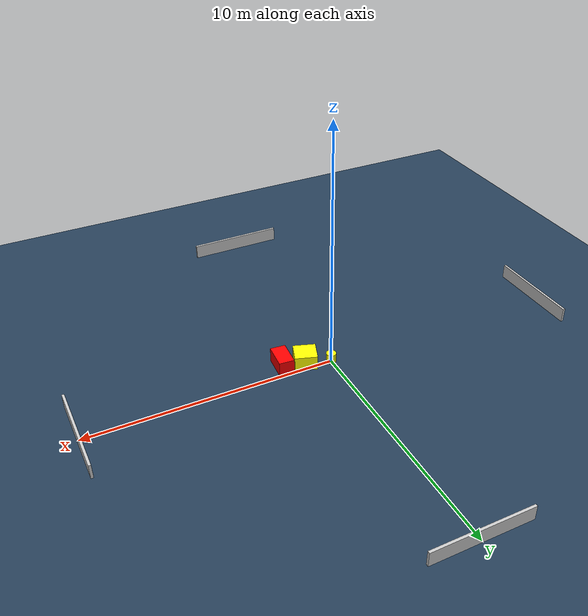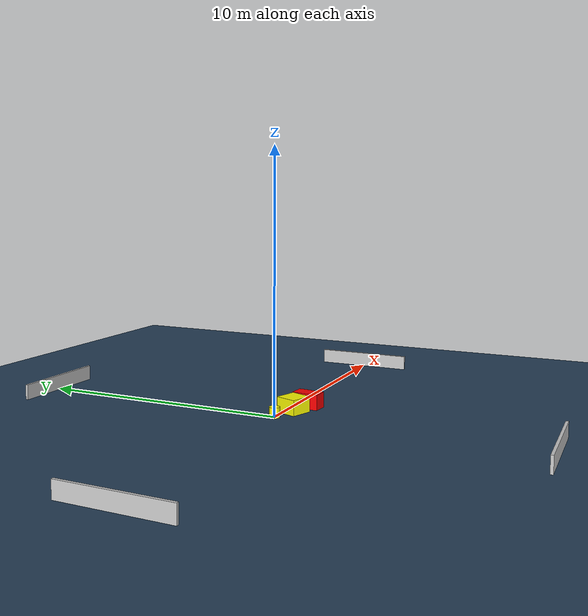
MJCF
<?xml version="1.0" ?>
<mujoco model="generated_environment">
  <option timestep="0.01" integrator="RK4" cone="elliptic"/>
  <default>
    <geom density="1"/>
  </default>
  <asset>
    <texture builtin="gradient" height="3072" name="skybox" rgb1="0.3 0.5 0.7" rgb2="0 0 0" type="skybox" width="512"/>
    <texture builtin="checker" height="300" name="groundplane" rgb1="0.2 0.3 0.4" rgb2="0.1 0.2 0.3" type="2d" width="300"/>
    <material name="groundplane" reflectance="0.2" texrepeat="5 5" texture="groundplane"/>
  </asset>
  <worldbody>
    <light dir="0 0 -1" directional="true" pos="0 0 1.5"/>
    <geom condim="3" friction="0.5 0.005 0.001" material="groundplane" name="floor" pos="0 0 0" size="0 0 0.05" type="plane"/>
    <body name="walls">
      <geom name="wall_1" condim="4" pos="-10.0 0.0 0.3" rgba="0.800000011920929 0.800000011920929 0.800000011920929 1.0" size="0.05 2.0 0.3" type="box"/>
      <geom name="wall_2" condim="4" pos="10.0 0.0 0.3" rgba="0.800000011920929 0.800000011920929 0.800000011920929 1.0" size="0.05 2.0 0.3" type="box"/>
      <geom name="wall_3" condim="4" pos="0.0 -10.0 0.3" rgba="0.800000011920929 0.800000011920929 0.800000011920929 1.0" size="2.0 0.05 0.3" type="box"/>
      <geom name="wall_4" condim="4" pos="0.0 10.0 0.3" rgba="0.800000011920929 0.800000011920929 0.800000011920929 1.0" size="2.0 0.05 0.3" type="box"/>
    </body>
    <body name="robot">
      <joint name="joint_x" type="slide" pos="0 0 0" axis="1 0 0"/>
      <joint name="joint_y" type="slide" pos="0 0 0" axis="0 1 0"/>
      <geom name="robot" type="cylinder" pos="0.0 0.0 0.2" size="0.2 0.2 0.0" mass="5.0" friction="1.0 0.005 0.0001" condim="4" rgba="1.0 1.0 0.0 1.0"/>
    </body>
    <body name="obstacle_1_movable">
      <geom name="obstacle_1_movable" condim="4" pos="0.9808166441862359 -0.3305709905432152 0.3" euler="0 0 340.695656706368" friction="0.0 0.005 0.001" rgba="1.0 1.0 0.0 1.0" size="0.44979891605363487 0.4243771223417716 0.3" type="box" mass="0.1"/>
      <joint type="free"/>
    </body>
    <body name="obstacle_2_static">
      <geom name="obstacle_2_static" condim="4" pos="1.864178881226728 -0.558254445179299 0.3" euler="0 0 265.54017997938195" friction="0.0 0.005 0.001" rgba="1.0 0.0 0.0 1.0" size="0.5243448350910167 0.3081328918179306 0.3" type="box"/>
    </body>
  </worldbody>
  <actuator>
    <motor name="actuator_x" joint="joint_x" gear="1" ctrlrange="-1 1"/>
    <motor name="actuator_y" joint="joint_y" gear="1" ctrlrange="-1 1"/>
  </actuator>
</mujoco>
